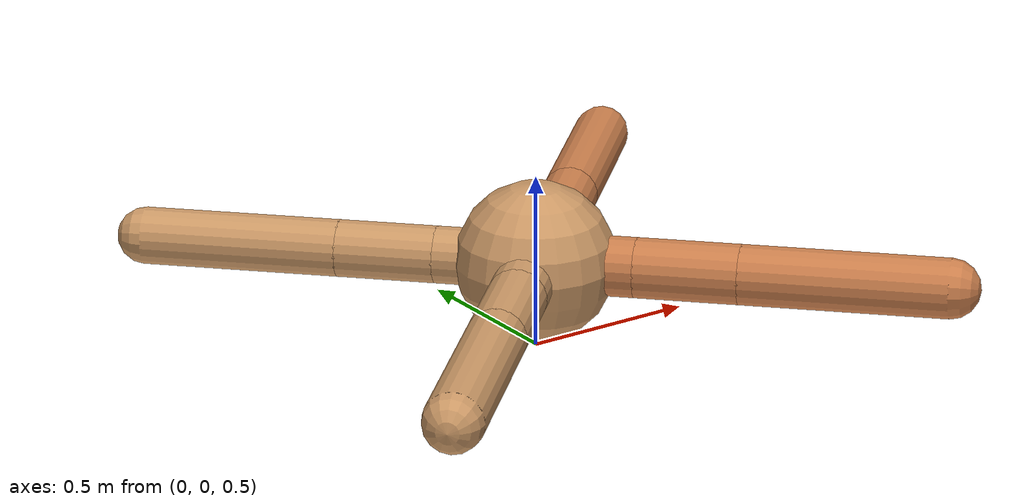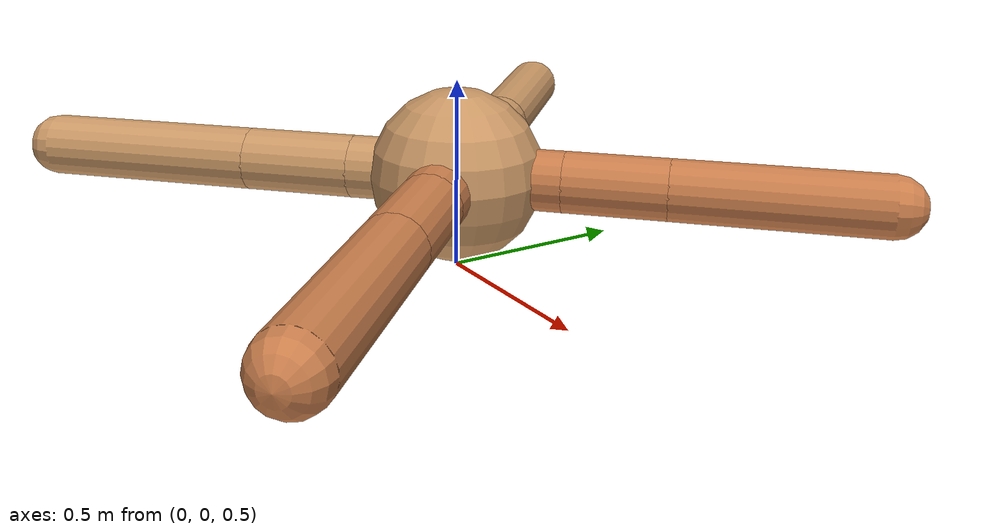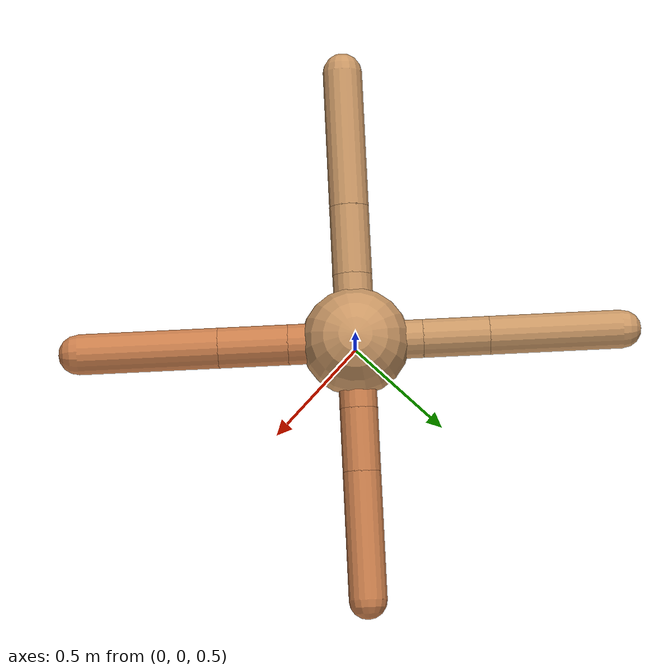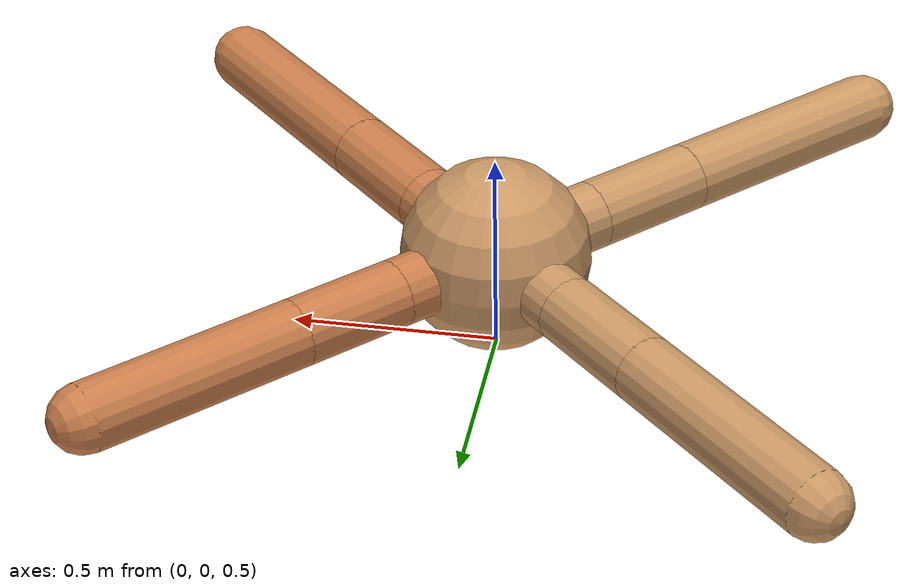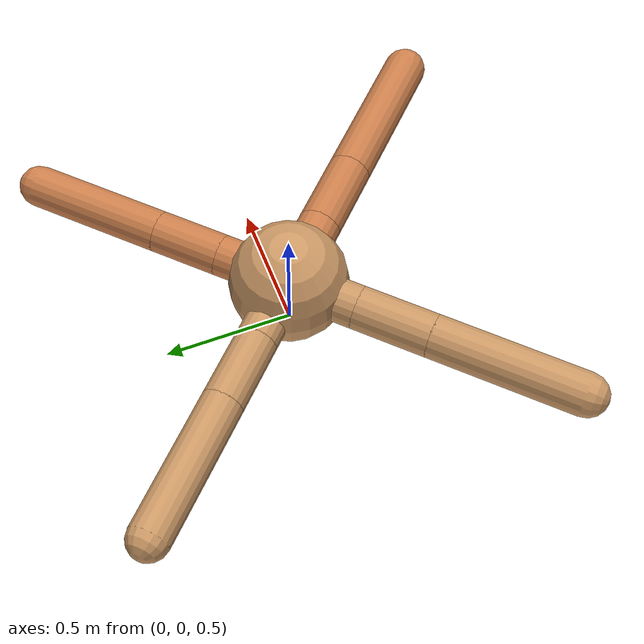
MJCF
<?xml version="1.0" ?>
<mujoco model="ant">

	<compiler angle="degree" coordinate="local" inertiafromgeom="true"/>

	<option integrator="RK4" timestep="0.01"/>

	<custom>

		<numeric data="0.0 0.0 0.55 1.0 0.0 0.0 0.0 0.0 1.0 0.0 -1.0 0.0 -1.0 0.0 1.0" name="init_qpos"/>

	</custom>

	<default>

		<joint armature="1" damping="1" limited="true"/>

		<geom conaffinity="0" condim="3" density="5.0" friction="1.5 0.1 0.1" margin="0.01" rgba="0.8 0.6 0.4 1"/>

	</default>

	<worldbody>

		<body name="torso" pos="0 0 0.75">

			<geom name="torso_geom" pos="0 0 0" size="0.2286209607318324" type="sphere"/>

			<!--joint armature="0" damping="0" limited="false" margin="0.01" name="root" pos="0 0 0" type="free"/-->

			<body name="front_left_leg" pos="0 0 0">

				<geom fromto="0 0 0 0.2 0.2 0" name="aux_1_geom" size="0.08042174128589887" type="capsule" rgba=".8 .5 .3 1"/>

				<body name="aux_1" pos="0.2 0.2 0">

					<joint axis="0 0 1" name="hip_1" pos="0.0 0.0 0.0" range="-40 40" type="hinge"/>

					<geom fromto="0 0 0 0.18745097360847923 0.18745097360847923 0" name="left_leg_geom" size="0.08042174128589887" type="capsule" rgba=".8 .5 .3 1"/>

					<body pos="0.18745097360847923 0.18745097360847923 0" name="front_left_foot">

						<joint axis="-1 1 0" name="ankle_1" pos="0.0 0.0 0.0" range="30 100" type="hinge"/>

						<geom fromto="0 0 0 0.37490194721695846 0.37490194721695846 0" name="left_ankle_geom" size="0.08042174128589887" type="capsule" rgba=".8 .5 .3 1"/>

					</body>

				</body>

			</body>

			<body name="front_right_leg" pos="0 0 0">

				<geom fromto="0 0 0 -0.2 0.2 0" name="aux_2_geom" size="0.08088278916266639" type="capsule"/>

				<body name="aux_2" pos="-0.2 0.2 0">

					<joint axis="0 0 1" name="hip_2" pos="0.0 0.0 0.0" range="-40 40" type="hinge"/>

					<geom fromto="0 0 0 -0.19766144323362628 0.19766144323362628 0" name="right_leg_geom" size="0.08088278916266639" type="capsule"/>

					<body pos="-0.19766144323362628 0.19766144323362628 0" name="front_right_foot">

						<joint axis="1 1 0" name="ankle_2" pos="0.0 0.0 0.0" range="-100 -30" type="hinge"/>

						<geom fromto="0 0 0 -0.39532288646725255 0.39532288646725255 0" name="right_ankle_geom" size="0.08088278916266639" type="capsule"/>

					</body>

				</body>

			</body>

			<body name="left_back_leg" pos="0 0 0">

				<geom fromto="0 0 0 -0.2 -0.2 0" name="aux_3_geom" size="0.08426877836311918" type="capsule"/>

				<body name="aux_3" pos="-0.2 -0.2 0">

					<joint axis="0 0 1" name="hip_3" pos="0.0 0.0 0.0" range="-40 40" type="hinge"/>

					<geom fromto="0 0 0 -0.20791916755934717 -0.20791916755934717 0" name="back_leg_geom" size="0.08426877836311918" type="capsule"/>

					<body pos="-0.20791916755934717 -0.20791916755934717 0" name="left_back_foot">

						<joint axis="-1 1 0" name="ankle_3" pos="0.0 0.0 0.0" range="-100 -30" type="hinge"/>

						<geom fromto="0 0 0 -0.41583833511869434 -0.41583833511869434 0" name="third_ankle_geom" size="0.08426877836311918" type="capsule"/>

					</body>

				</body>

			</body>

			<body name="right_back_leg" pos="0 0 0">

				<geom fromto="0 0 0 0.2 -0.2 0" name="aux_4_geom" size="0.08508616896380457" type="capsule" rgba=".8 .5 .3 1"/>

				<body name="aux_4" pos="0.2 -0.2 0">

					<joint axis="0 0 1" name="hip_4" pos="0.0 0.0 0.0" range="-40 40" type="hinge"/>

					<geom fromto="0 0 0 0.20726031777096152 -0.20726031777096152 0" name="rightback_leg_geom" size="0.08508616896380457" type="capsule" rgba=".8 .5 .3 1"/>

					<body pos="0.20726031777096152 -0.20726031777096152 0" name="right_back_foot">

						<joint axis="1 1 0" name="ankle_4" pos="0.0 0.0 0.0" range="30 100" type="hinge"/>

						<geom fromto="0 0 0 0.41452063554192303 -0.41452063554192303 0" name="fourth_ankle_geom" size="0.08508616896380457" type="capsule" rgba=".8 .5 .3 1"/>

					</body>

				</body>

			</body>

		</body>

	</worldbody>

	<actuator>

		<motor ctrllimited="true" ctrlrange="-1.0 1.0" joint="hip_4" gear="150"/>

		<motor ctrllimited="true" ctrlrange="-1.0 1.0" joint="ankle_4" gear="150"/>

		<motor ctrllimited="true" ctrlrange="-1.0 1.0" joint="hip_1" gear="150"/>

		<motor ctrllimited="true" ctrlrange="-1.0 1.0" joint="ankle_1" gear="150"/>

		<motor ctrllimited="true" ctrlrange="-1.0 1.0" joint="hip_2" gear="150"/>

		<motor ctrllimited="true" ctrlrange="-1.0 1.0" joint="ankle_2" gear="150"/>

		<motor ctrllimited="true" ctrlrange="-1.0 1.0" joint="hip_3" gear="150"/>

		<motor ctrllimited="true" ctrlrange="-1.0 1.0" joint="ankle_3" gear="150"/>

	</actuator>

</mujoco>
